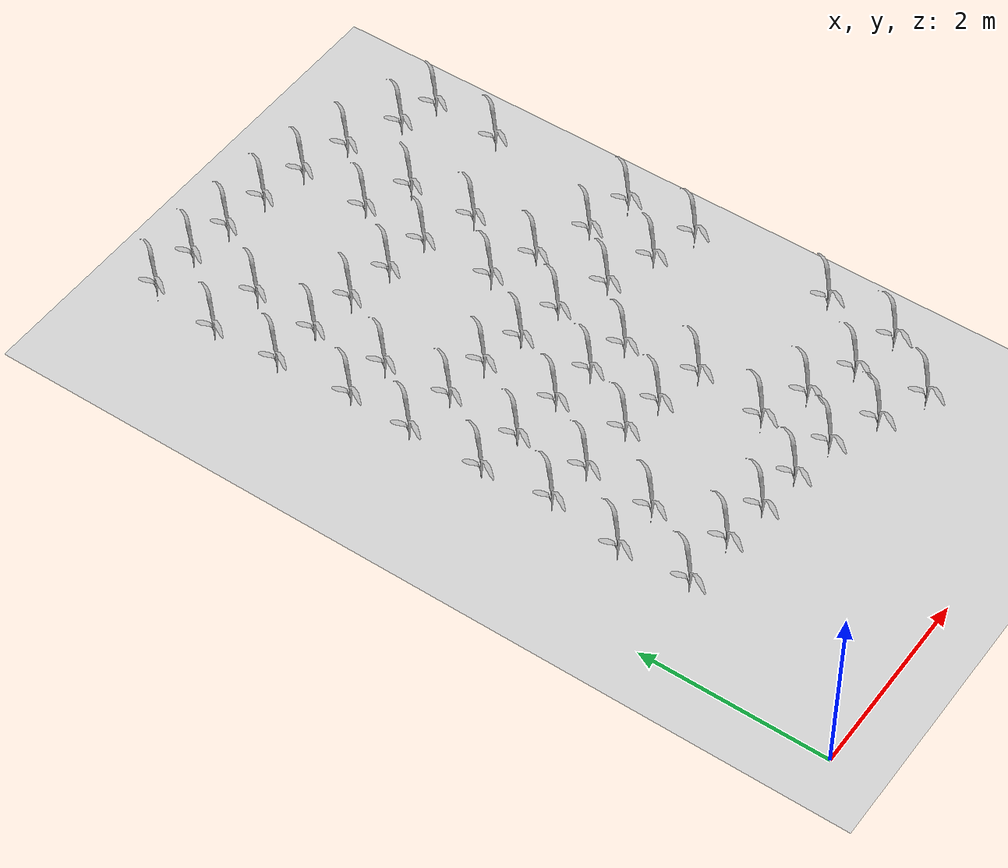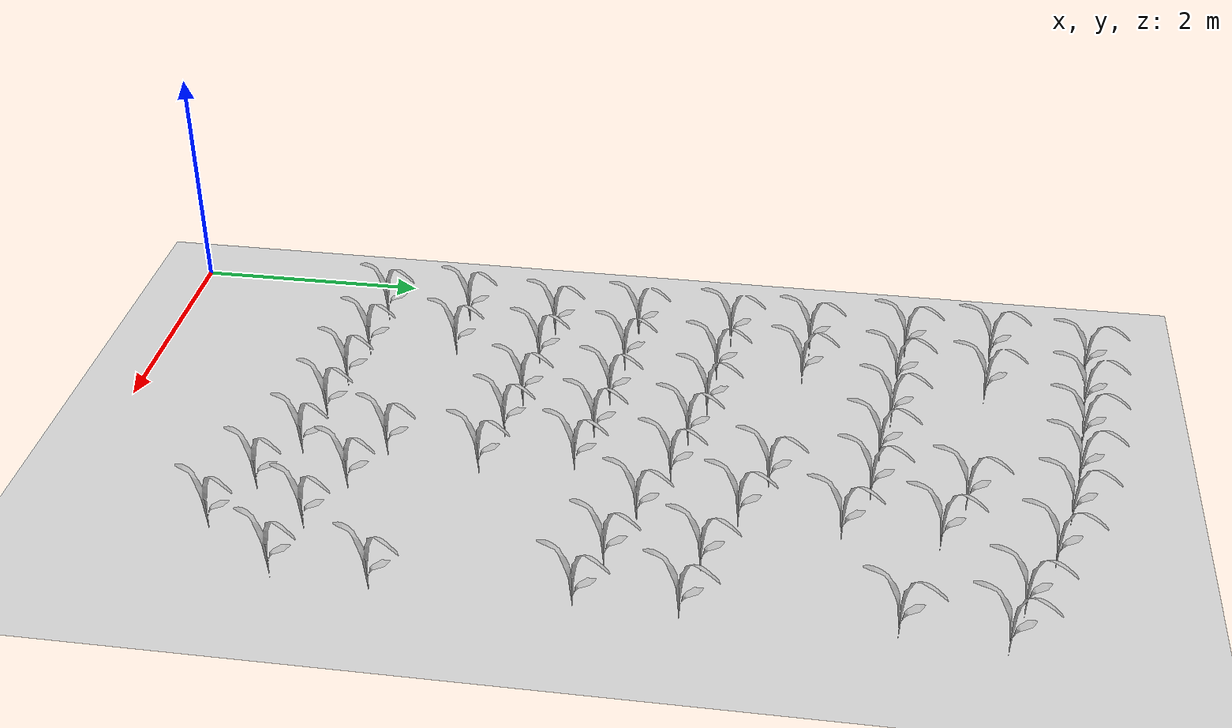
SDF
<sdf version="1.7">
 <world name="default">
  <model name="ground_plane">
   <static>1</static>
   <link name="link">
    <collision name="collision">
     <geometry><plane><normal>0 0 1</normal><size>100 100</size></plane></geometry>
     <surface><friction><ode><mu>100</mu><mu2>50</mu2></ode></friction></surface>
    </collision>
    <visual name="visual">
     <cast_shadows>0</cast_shadows>
     <geometry><plane><normal>0 0 1</normal><size>100 100</size></plane></geometry>
     <material>
      <script><uri>file://media/materials/scripts/gazebo.material</uri><name>Gazebo/Grey</name></script>
     </material>
    </visual>
   </link>
  </model>
  <model name="field_row_full_double">
   <model name="maize_02_clone_100">
    <pose>-3.79971 1.28783 0.000249 0 -0 0</pose>
    <link name="maize_02_link">
     <inertial>
      <pose>0 0 0.01 0 -0 0</pose>
      <mass>0.3</mass>
      <inertia>
       <ixx>0.00334167</ixx>
       <ixy>0</ixy>
       <ixz>0</ixz>
       <iyy>0.00334167</iyy>
       <iyz>0</iyz>
       <izz>1.66667e-05</izz>
      </inertia>
      <pose>0 0 0.1 0 -0 0</pose>
     </inertial>
     <collision name="collision">
      <pose>0 0 0.2 0 -0 0</pose>
      <geometry><box><size>0.02 0.02 0.4</size></box></geometry>
      <surface><friction><ode><mu>10</mu><mu2>10</mu2></ode></friction></surface>
     </collision>
     <visual name="visual">
      <geometry>
       <mesh><uri>model://maize_02/meshes/maize_02.dae</uri><scale>0.683166 0.683166 0.683166</scale></mesh>
      </geometry>
     </visual>
    </link>
   </model>
   <model name="maize_02_clone_101">
    <pose>-3.34971 1.17983 0.000249 0 -0 0</pose>
    <link name="maize_02_link">
     <inertial>
      <pose>0 0 0.01 0 -0 0</pose>
      <mass>0.3</mass>
      <inertia>
       <ixx>0.00334167</ixx>
       <ixy>0</ixy>
       <ixz>0</ixz>
       <iyy>0.00334167</iyy>
       <iyz>0</iyz>
       <izz>1.66667e-05</izz>
      </inertia>
      <pose>0 0 0.1 0 -0 0</pose>
     </inertial>
     <collision name="collision">
      <pose>0 0 0.2 0 -0 0</pose>
      <geometry><box><size>0.02 0.02 0.4</size></box></geometry>
      <surface><friction><ode><mu>10</mu><mu2>10</mu2></ode></friction></surface>
     </collision>
     <visual name="visual">
      <geometry>
       <mesh><uri>model://maize_02/meshes/maize_02.dae</uri><scale>0.683166 0.683166 0.683166</scale></mesh>
      </geometry>
     </visual>
    </link>
   </model>
   <model name="maize_02_clone_102">
    <pose>-2.85471 1.09883 0.000249 0 -0 0</pose>
    <link name="maize_02_link">
     <inertial>
      <pose>0 0 0.01 0 -0 0</pose>
      <mass>0.3</mass>
      <inertia>
       <ixx>0.00334167</ixx>
       <ixy>0</ixy>
       <ixz>0</ixz>
       <iyy>0.00334167</iyy>
       <iyz>0</iyz>
       <izz>1.66667e-05</izz>
      </inertia>
      <pose>0 0 0.1 0 -0 0</pose>
     </inertial>
     <collision name="collision">
      <pose>0 0 0.2 0 -0 0</pose>
      <geometry><box><size>0.02 0.02 0.4</size></box></geometry>
      <surface><friction><ode><mu>10</mu><mu2>10</mu2></ode></friction></surface>
     </collision>
     <visual name="visual">
      <geometry>
       <mesh><uri>model://maize_02/meshes/maize_02.dae</uri><scale>0.683166 0.683166 0.683166</scale></mesh>
      </geometry>
     </visual>
    </link>
   </model>
   <model name="maize_02_clone_103">
    <pose>-2.30571 0.900831 0.000249 0 -0 0</pose>
    <link name="maize_02_link">
     <inertial>
      <pose>0 0 0.01 0 -0 0</pose>
      <mass>0.3</mass>
      <inertia>
       <ixx>0.00334167</ixx>
       <ixy>0</ixy>
       <ixz>0</ixz>
       <iyy>0.00334167</iyy>
       <iyz>0</iyz>
       <izz>1.66667e-05</izz>
      </inertia>
      <pose>0 0 0.1 0 -0 0</pose>
     </inertial>
     <collision name="collision">
      <pose>0 0 0.2 0 -0 0</pose>
      <geometry><box><size>0.02 0.02 0.4</size></box></geometry>
      <surface><friction><ode><mu>10</mu><mu2>10</mu2></ode></friction></surface>
     </collision>
     <visual name="visual">
      <geometry>
       <mesh><uri>model://maize_02/meshes/maize_02.dae</uri><scale>0.683166 0.683166 0.683166</scale></mesh>
      </geometry>
     </visual>
    </link>
   </model>
   <model name="maize_02_clone_104">
    <pose>-1.76571 0.72983 0.000249 0 -0 0</pose>
    <link name="maize_02_link">
     <inertial>
      <pose>0 0 0.01 0 -0 0</pose>
      <mass>0.3</mass>
      <inertia>
       <ixx>0.00334167</ixx>
       <ixy>0</ixy>
       <ixz>0</ixz>
       <iyy>0.00334167</iyy>
       <iyz>0</iyz>
       <izz>1.66667e-05</izz>
      </inertia>
      <pose>0 0 0.1 0 -0 0</pose>
     </inertial>
     <collision name="collision">
      <pose>0 0 0.2 0 -0 0</pose>
      <geometry><box><size>0.02 0.02 0.4</size></box></geometry>
      <surface><friction><ode><mu>10</mu><mu2>10</mu2></ode></friction></surface>
     </collision>
     <visual name="visual">
      <geometry>
       <mesh><uri>model://maize_02/meshes/maize_02.dae</uri><scale>0.683166 0.683166 0.683166</scale></mesh>
      </geometry>
     </visual>
    </link>
   </model>
   <model name="maize_02_clone_105">
    <pose>-1.27071 0.57683 0.000249 0 -0 0</pose>
    <link name="maize_02_link">
     <inertial>
      <pose>0 0 0.01 0 -0 0</pose>
      <mass>0.3</mass>
      <inertia>
       <ixx>0.00334167</ixx>
       <ixy>0</ixy>
       <ixz>0</ixz>
       <iyy>0.00334167</iyy>
       <iyz>0</iyz>
       <izz>1.66667e-05</izz>
      </inertia>
      <pose>0 0 0.1 0 -0 0</pose>
     </inertial>
     <collision name="collision">
      <pose>0 0 0.2 0 -0 0</pose>
      <geometry><box><size>0.02 0.02 0.4</size></box></geometry>
      <surface><friction><ode><mu>10</mu><mu2>10</mu2></ode></friction></surface>
     </collision>
     <visual name="visual">
      <geometry>
       <mesh><uri>model://maize_02/meshes/maize_02.dae</uri><scale>0.683166 0.683166 0.683166</scale></mesh>
      </geometry>
     </visual>
    </link>
   </model>
   <model name="maize_02_clone_110">
    <pose>-1.27971 1.35083 0.000249 0 -0 0</pose>
    <link name="maize_02_link">
     <inertial>
      <pose>0 0 0.01 0 -0 0</pose>
      <mass>0.3</mass>
      <inertia>
       <ixx>0.00334167</ixx>
       <ixy>0</ixy>
       <ixz>0</ixz>
       <iyy>0.00334167</iyy>
       <iyz>0</iyz>
       <izz>1.66667e-05</izz>
      </inertia>
      <pose>0 0 0.1 0 -0 0</pose>
     </inertial>
     <collision name="collision">
      <pose>0 0 0.2 0 -0 0</pose>
      <geometry><box><size>0.02 0.02 0.4</size></box></geometry>
      <surface><friction><ode><mu>10</mu><mu2>10</mu2></ode></friction></surface>
     </collision>
     <visual name="visual">
      <geometry>
       <mesh><uri>model://maize_02/meshes/maize_02.dae</uri><scale>0.683166 0.683166 0.683166</scale></mesh>
      </geometry>
     </visual>
    </link>
   </model>
   <model name="maize_02_clone_111">
    <pose>-1.81071 1.44983 0.000249 0 -0 0</pose>
    <link name="maize_02_link">
     <inertial>
      <pose>0 0 0.01 0 -0 0</pose>
      <mass>0.3</mass>
      <inertia>
       <ixx>0.00334167</ixx>
       <ixy>0</ixy>
       <ixz>0</ixz>
       <iyy>0.00334167</iyy>
       <iyz>0</iyz>
       <izz>1.66667e-05</izz>
      </inertia>
      <pose>0 0 0.1 0 -0 0</pose>
     </inertial>
     <collision name="collision">
      <pose>0 0 0.2 0 -0 0</pose>
      <geometry><box><size>0.02 0.02 0.4</size></box></geometry>
      <surface><friction><ode><mu>10</mu><mu2>10</mu2></ode></friction></surface>
     </collision>
     <visual name="visual">
      <geometry>
       <mesh><uri>model://maize_02/meshes/maize_02.dae</uri><scale>0.683166 0.683166 0.683166</scale></mesh>
      </geometry>
     </visual>
    </link>
   </model>
   <model name="maize_02_clone_112">
    <pose>-2.39571 1.67483 0.000249 0 -0 0</pose>
    <link name="maize_02_link">
     <inertial>
      <pose>0 0 0.01 0 -0 0</pose>
      <mass>0.3</mass>
      <inertia>
       <ixx>0.00334167</ixx>
       <ixy>0</ixy>
       <ixz>0</ixz>
       <iyy>0.00334167</iyy>
       <iyz>0</iyz>
       <izz>1.66667e-05</izz>
      </inertia>
      <pose>0 0 0.1 0 -0 0</pose>
     </inertial>
     <collision name="collision">
      <pose>0 0 0.2 0 -0 0</pose>
      <geometry><box><size>0.02 0.02 0.4</size></box></geometry>
      <surface><friction><ode><mu>10</mu><mu2>10</mu2></ode></friction></surface>
     </collision>
     <visual name="visual">
      <geometry>
       <mesh><uri>model://maize_02/meshes/maize_02.dae</uri><scale>0.683166 0.683166 0.683166</scale></mesh>
      </geometry>
     </visual>
    </link>
   </model>
   <model name="maize_02_clone_113">
    <pose>-2.86371 1.87283 0.000249 0 -0 0</pose>
    <link name="maize_02_link">
     <inertial>
      <pose>0 0 0.01 0 -0 0</pose>
      <mass>0.3</mass>
      <inertia>
       <ixx>0.00334167</ixx>
       <ixy>0</ixy>
       <ixz>0</ixz>
       <iyy>0.00334167</iyy>
       <iyz>0</iyz>
       <izz>1.66667e-05</izz>
      </inertia>
      <pose>0 0 0.1 0 -0 0</pose>
     </inertial>
     <collision name="collision">
      <pose>0 0 0.2 0 -0 0</pose>
      <geometry><box><size>0.02 0.02 0.4</size></box></geometry>
      <surface><friction><ode><mu>10</mu><mu2>10</mu2></ode></friction></surface>
     </collision>
     <visual name="visual">
      <geometry>
       <mesh><uri>model://maize_02/meshes/maize_02.dae</uri><scale>0.683166 0.683166 0.683166</scale></mesh>
      </geometry>
     </visual>
    </link>
   </model>
   <model name="maize_02_clone_114">
    <pose>-4.34871 2.04383 0.000249 0 -0 0</pose>
    <link name="maize_02_link">
     <inertial>
      <pose>0 0 0.01 0 -0 0</pose>
      <mass>0.3</mass>
      <inertia>
       <ixx>0.00334167</ixx>
       <ixy>0</ixy>
       <ixz>0</ixz>
       <iyy>0.00334167</iyy>
       <iyz>0</iyz>
       <izz>1.66667e-05</izz>
      </inertia>
      <pose>0 0 0.1 0 -0 0</pose>
     </inertial>
     <collision name="collision">
      <pose>0 0 0.2 0 -0 0</pose>
      <geometry><box><size>0.02 0.02 0.4</size></box></geometry>
      <surface><friction><ode><mu>10</mu><mu2>10</mu2></ode></friction></surface>
     </collision>
     <visual name="visual">
      <geometry>
       <mesh><uri>model://maize_02/meshes/maize_02.dae</uri><scale>0.683166 0.683166 0.683166</scale></mesh>
      </geometry>
     </visual>
    </link>
   </model>
   <model name="maize_02_clone_115">
    <pose>-4.83471 2.07983 0.000249 0 -0 0</pose>
    <link name="maize_02_link">
     <inertial>
      <pose>0 0 0.01 0 -0 0</pose>
      <mass>0.3</mass>
      <inertia>
       <ixx>0.00334167</ixx>
       <ixy>0</ixy>
       <ixz>0</ixz>
       <iyy>0.00334167</iyy>
       <iyz>0</iyz>
       <izz>1.66667e-05</izz>
      </inertia>
      <pose>0 0 0.1 0 -0 0</pose>
     </inertial>
     <collision name="collision">
      <pose>0 0 0.2 0 -0 0</pose>
      <geometry><box><size>0.02 0.02 0.4</size></box></geometry>
      <surface><friction><ode><mu>10</mu><mu2>10</mu2></ode></friction></surface>
     </collision>
     <visual name="visual">
      <geometry>
       <mesh><uri>model://maize_02/meshes/maize_02.dae</uri><scale>0.683166 0.683166 0.683166</scale></mesh>
      </geometry>
     </visual>
    </link>
   </model>
   <model name="maize_02_clone_119">
    <pose>-2.86371 2.67383 0.000249 0 -0 0</pose>
    <link name="maize_02_link">
     <inertial>
      <pose>0 0 0.01 0 -0 0</pose>
      <mass>0.3</mass>
      <inertia>
       <ixx>0.00334167</ixx>
       <ixy>0</ixy>
       <ixz>0</ixz>
       <iyy>0.00334167</iyy>
       <iyz>0</iyz>
       <izz>1.66667e-05</izz>
      </inertia>
      <pose>0 0 0.1 0 -0 0</pose>
     </inertial>
     <collision name="collision">
      <pose>0 0 0.2 0 -0 0</pose>
      <geometry><box><size>0.02 0.02 0.4</size></box></geometry>
      <surface><friction><ode><mu>10</mu><mu2>10</mu2></ode></friction></surface>
     </collision>
     <visual name="visual">
      <geometry>
       <mesh><uri>model://maize_02/meshes/maize_02.dae</uri><scale>0.683166 0.683166 0.683166</scale></mesh>
      </geometry>
     </visual>
    </link>
   </model>
   <model name="maize_02_clone_120">
    <pose>-2.32371 2.46683 0.000249 0 -0 0</pose>
    <link name="maize_02_link">
     <inertial>
      <pose>0 0 0.01 0 -0 0</pose>
      <mass>0.3</mass>
      <inertia>
       <ixx>0.00334167</ixx>
       <ixy>0</ixy>
       <ixz>0</ixz>
       <iyy>0.00334167</iyy>
       <iyz>0</iyz>
       <izz>1.66667e-05</izz>
      </inertia>
      <pose>0 0 0.1 0 -0 0</pose>
     </inertial>
     <collision name="collision">
      <pose>0 0 0.2 0 -0 0</pose>
      <geometry><box><size>0.02 0.02 0.4</size></box></geometry>
      <surface><friction><ode><mu>10</mu><mu2>10</mu2></ode></friction></surface>
     </collision>
     <visual name="visual">
      <geometry>
       <mesh><uri>model://maize_02/meshes/maize_02.dae</uri><scale>0.683166 0.683166 0.683166</scale></mesh>
      </geometry>
     </visual>
    </link>
   </model>
   <model name="maize_02_clone_121">
    <pose>-3.35871 2.72783 0.000249 0 -0 0</pose>
    <link name="maize_02_link">
     <inertial>
      <pose>0 0 0.01 0 -0 0</pose>
      <mass>0.3</mass>
      <inertia>
       <ixx>0.00334167</ixx>
       <ixy>0</ixy>
       <ixz>0</ixz>
       <iyy>0.00334167</iyy>
       <iyz>0</iyz>
       <izz>1.66667e-05</izz>
      </inertia>
      <pose>0 0 0.1 0 -0 0</pose>
     </inertial>
     <collision name="collision">
      <pose>0 0 0.2 0 -0 0</pose>
      <geometry><box><size>0.02 0.02 0.4</size></box></geometry>
      <surface><friction><ode><mu>10</mu><mu2>10</mu2></ode></friction></surface>
     </collision>
     <visual name="visual">
      <geometry>
       <mesh><uri>model://maize_02/meshes/maize_02.dae</uri><scale>0.683166 0.683166 0.683166</scale></mesh>
      </geometry>
     </visual>
    </link>
   </model>
   <model name="maize_02_clone_122">
    <pose>-3.86271 2.80883 0.000249 0 -0 0</pose>
    <link name="maize_02_link">
     <inertial>
      <pose>0 0 0.01 0 -0 0</pose>
      <mass>0.3</mass>
      <inertia>
       <ixx>0.00334167</ixx>
       <ixy>0</ixy>
       <ixz>0</ixz>
       <iyy>0.00334167</iyy>
       <iyz>0</iyz>
       <izz>1.66667e-05</izz>
      </inertia>
      <pose>0 0 0.1 0 -0 0</pose>
     </inertial>
     <collision name="collision">
      <pose>0 0 0.2 0 -0 0</pose>
      <geometry><box><size>0.02 0.02 0.4</size></box></geometry>
      <surface><friction><ode><mu>10</mu><mu2>10</mu2></ode></friction></surface>
     </collision>
     <visual name="visual">
      <geometry>
       <mesh><uri>model://maize_02/meshes/maize_02.dae</uri><scale>0.683166 0.683166 0.683166</scale></mesh>
      </geometry>
     </visual>
    </link>
   </model>
   <model name="maize_02_clone_123">
    <pose>-4.38471 2.84483 0.000249 0 -0 0</pose>
    <link name="maize_02_link">
     <inertial>
      <pose>0 0 0.01 0 -0 0</pose>
      <mass>0.3</mass>
      <inertia>
       <ixx>0.00334167</ixx>
       <ixy>0</ixy>
       <ixz>0</ixz>
       <iyy>0.00334167</iyy>
       <iyz>0</iyz>
       <izz>1.66667e-05</izz>
      </inertia>
      <pose>0 0 0.1 0 -0 0</pose>
     </inertial>
     <collision name="collision">
      <pose>0 0 0.2 0 -0 0</pose>
      <geometry><box><size>0.02 0.02 0.4</size></box></geometry>
      <surface><friction><ode><mu>10</mu><mu2>10</mu2></ode></friction></surface>
     </collision>
     <visual name="visual">
      <geometry>
       <mesh><uri>model://maize_02/meshes/maize_02.dae</uri><scale>0.683166 0.683166 0.683166</scale></mesh>
      </geometry>
     </visual>
    </link>
   </model>
   <model name="maize_02_clone_124">
    <pose>-4.88871 2.90783 0.000249 0 -0 0</pose>
    <link name="maize_02_link">
     <inertial>
      <pose>0 0 0.01 0 -0 0</pose>
      <mass>0.3</mass>
      <inertia>
       <ixx>0.00334167</ixx>
       <ixy>0</ixy>
       <ixz>0</ixz>
       <iyy>0.00334167</iyy>
       <iyz>0</iyz>
       <izz>1.66667e-05</izz>
      </inertia>
      <pose>0 0 0.1 0 -0 0</pose>
     </inertial>
     <collision name="collision">
      <pose>0 0 0.2 0 -0 0</pose>
      <geometry><box><size>0.02 0.02 0.4</size></box></geometry>
      <surface><friction><ode><mu>10</mu><mu2>10</mu2></ode></friction></surface>
     </collision>
     <visual name="visual">
      <geometry>
       <mesh><uri>model://maize_02/meshes/maize_02.dae</uri><scale>0.683166 0.683166 0.683166</scale></mesh>
      </geometry>
     </visual>
    </link>
   </model>
   <model name="maize_02_clone_125">
    <pose>-4.91571 3.63683 0.000249 0 -0 0</pose>
    <link name="maize_02_link">
     <inertial>
      <pose>0 0 0.01 0 -0 0</pose>
      <mass>0.3</mass>
      <inertia>
       <ixx>0.00334167</ixx>
       <ixy>0</ixy>
       <ixz>0</ixz>
       <iyy>0.00334167</iyy>
       <iyz>0</iyz>
       <izz>1.66667e-05</izz>
      </inertia>
      <pose>0 0 0.1 0 -0 0</pose>
     </inertial>
     <collision name="collision">
      <pose>0 0 0.2 0 -0 0</pose>
      <geometry><box><size>0.02 0.02 0.4</size></box></geometry>
      <surface><friction><ode><mu>10</mu><mu2>10</mu2></ode></friction></surface>
     </collision>
     <visual name="visual">
      <geometry>
       <mesh><uri>model://maize_02/meshes/maize_02.dae</uri><scale>0.683166 0.683166 0.683166</scale></mesh>
      </geometry>
     </visual>
    </link>
   </model>
   <model name="maize_02_clone_126">
    <pose>-4.33071 3.58283 0.000249 0 -0 0</pose>
    <link name="maize_02_link">
     <inertial>
      <pose>0 0 0.01 0 -0 0</pose>
      <mass>0.3</mass>
      <inertia>
       <ixx>0.00334167</ixx>
       <ixy>0</ixy>
       <ixz>0</ixz>
       <iyy>0.00334167</iyy>
       <iyz>0</iyz>
       <izz>1.66667e-05</izz>
      </inertia>
      <pose>0 0 0.1 0 -0 0</pose>
     </inertial>
     <collision name="collision">
      <pose>0 0 0.2 0 -0 0</pose>
      <geometry><box><size>0.02 0.02 0.4</size></box></geometry>
      <surface><friction><ode><mu>10</mu><mu2>10</mu2></ode></friction></surface>
     </collision>
     <visual name="visual">
      <geometry>
       <mesh><uri>model://maize_02/meshes/maize_02.dae</uri><scale>0.683166 0.683166 0.683166</scale></mesh>
      </geometry>
     </visual>
    </link>
   </model>
   <model name="maize_02_clone_127">
    <pose>-2.82771 3.41183 0.000249 0 -0 0</pose>
    <link name="maize_02_link">
     <inertial>
      <pose>0 0 0.01 0 -0 0</pose>
      <mass>0.3</mass>
      <inertia>
       <ixx>0.00334167</ixx>
       <ixy>0</ixy>
       <ixz>0</ixz>
       <iyy>0.00334167</iyy>
       <iyz>0</iyz>
       <izz>1.66667e-05</izz>
      </inertia>
      <pose>0 0 0.1 0 -0 0</pose>
     </inertial>
     <collision name="collision">
      <pose>0 0 0.2 0 -0 0</pose>
      <geometry><box><size>0.02 0.02 0.4</size></box></geometry>
      <surface><friction><ode><mu>10</mu><mu2>10</mu2></ode></friction></surface>
     </collision>
     <visual name="visual">
      <geometry>
       <mesh><uri>model://maize_02/meshes/maize_02.dae</uri><scale>0.683166 0.683166 0.683166</scale></mesh>
      </geometry>
     </visual>
    </link>
   </model>
   <model name="maize_02_clone_128">
    <pose>-2.34171 3.21383 0.000249 0 -0 0</pose>
    <link name="maize_02_link">
     <inertial>
      <pose>0 0 0.01 0 -0 0</pose>
      <mass>0.3</mass>
      <inertia>
       <ixx>0.00334167</ixx>
       <ixy>0</ixy>
       <ixz>0</ixz>
       <iyy>0.00334167</iyy>
       <iyz>0</iyz>
       <izz>1.66667e-05</izz>
      </inertia>
      <pose>0 0 0.1 0 -0 0</pose>
     </inertial>
     <collision name="collision">
      <pose>0 0 0.2 0 -0 0</pose>
      <geometry><box><size>0.02 0.02 0.4</size></box></geometry>
      <surface><friction><ode><mu>10</mu><mu2>10</mu2></ode></friction></surface>
     </collision>
     <visual name="visual">
      <geometry>
       <mesh><uri>model://maize_02/meshes/maize_02.dae</uri><scale>0.683166 0.683166 0.683166</scale></mesh>
      </geometry>
     </visual>
    </link>
   </model>
   <model name="maize_02_clone_129">
    <pose>-1.32471 2.91683 0.000249 0 -0 0</pose>
    <link name="maize_02_link">
     <inertial>
      <pose>0 0 0.01 0 -0 0</pose>
      <mass>0.3</mass>
      <inertia>
       <ixx>0.00334167</ixx>
       <ixy>0</ixy>
       <ixz>0</ixz>
       <iyy>0.00334167</iyy>
       <iyz>0</iyz>
       <izz>1.66667e-05</izz>
      </inertia>
      <pose>0 0 0.1 0 -0 0</pose>
     </inertial>
     <collision name="collision">
      <pose>0 0 0.2 0 -0 0</pose>
      <geometry><box><size>0.02 0.02 0.4</size></box></geometry>
      <surface><friction><ode><mu>10</mu><mu2>10</mu2></ode></friction></surface>
     </collision>
     <visual name="visual">
      <geometry>
       <mesh><uri>model://maize_02/meshes/maize_02.dae</uri><scale>0.683166 0.683166 0.683166</scale></mesh>
      </geometry>
     </visual>
    </link>
   </model>
   <model name="maize_02_clone_134">
    <pose>-1.27071 3.69083 0.000249 0 -0 0</pose>
    <link name="maize_02_link">
     <inertial>
      <pose>0 0 0.01 0 -0 0</pose>
      <mass>0.3</mass>
      <inertia>
       <ixx>0.00334167</ixx>
       <ixy>0</ixy>
       <ixz>0</ixz>
       <iyy>0.00334167</iyy>
       <iyz>0</iyz>
       <izz>1.66667e-05</izz>
      </inertia>
      <pose>0 0 0.1 0 -0 0</pose>
     </inertial>
     <collision name="collision">
      <pose>0 0 0.2 0 -0 0</pose>
      <geometry><box><size>0.02 0.02 0.4</size></box></geometry>
      <surface><friction><ode><mu>10</mu><mu2>10</mu2></ode></friction></surface>
     </collision>
     <visual name="visual">
      <geometry>
       <mesh><uri>model://maize_02/meshes/maize_02.dae</uri><scale>0.683166 0.683166 0.683166</scale></mesh>
      </geometry>
     </visual>
    </link>
   </model>
   <model name="maize_02_clone_135">
    <pose>-1.68471 3.81683 0.000249 0 -0 0</pose>
    <link name="maize_02_link">
     <inertial>
      <pose>0 0 0.01 0 -0 0</pose>
      <mass>0.3</mass>
      <inertia>
       <ixx>0.00334167</ixx>
       <ixy>0</ixy>
       <ixz>0</ixz>
       <iyy>0.00334167</iyy>
       <iyz>0</iyz>
       <izz>1.66667e-05</izz>
      </inertia>
      <pose>0 0 0.1 0 -0 0</pose>
     </inertial>
     <collision name="collision">
      <pose>0 0 0.2 0 -0 0</pose>
      <geometry><box><size>0.02 0.02 0.4</size></box></geometry>
      <surface><friction><ode><mu>10</mu><mu2>10</mu2></ode></friction></surface>
     </collision>
     <visual name="visual">
      <geometry>
       <mesh><uri>model://maize_02/meshes/maize_02.dae</uri><scale>0.683166 0.683166 0.683166</scale></mesh>
      </geometry>
     </visual>
    </link>
   </model>
   <model name="maize_02_clone_136">
    <pose>-2.25171 4.06883 0.000249 0 -0 0</pose>
    <link name="maize_02_link">
     <inertial>
      <pose>0 0 0.01 0 -0 0</pose>
      <mass>0.3</mass>
      <inertia>
       <ixx>0.00334167</ixx>
       <ixy>0</ixy>
       <ixz>0</ixz>
       <iyy>0.00334167</iyy>
       <iyz>0</iyz>
       <izz>1.66667e-05</izz>
      </inertia>
      <pose>0 0 0.1 0 -0 0</pose>
     </inertial>
     <collision name="collision">
      <pose>0 0 0.2 0 -0 0</pose>
      <geometry><box><size>0.02 0.02 0.4</size></box></geometry>
      <surface><friction><ode><mu>10</mu><mu2>10</mu2></ode></friction></surface>
     </collision>
     <visual name="visual">
      <geometry>
       <mesh><uri>model://maize_02/meshes/maize_02.dae</uri><scale>0.683166 0.683166 0.683166</scale></mesh>
      </geometry>
     </visual>
    </link>
   </model>
   <model name="maize_02_clone_137">
    <pose>-2.78271 4.21283 0.000249 0 -0 0</pose>
    <link name="maize_02_link">
     <inertial>
      <pose>0 0 0.01 0 -0 0</pose>
      <mass>0.3</mass>
      <inertia>
       <ixx>0.00334167</ixx>
       <ixy>0</ixy>
       <ixz>0</ixz>
       <iyy>0.00334167</iyy>
       <iyz>0</iyz>
       <izz>1.66667e-05</izz>
      </inertia>
      <pose>0 0 0.1 0 -0 0</pose>
     </inertial>
     <collision name="collision">
      <pose>0 0 0.2 0 -0 0</pose>
      <geometry><box><size>0.02 0.02 0.4</size></box></geometry>
      <surface><friction><ode><mu>10</mu><mu2>10</mu2></ode></friction></surface>
     </collision>
     <visual name="visual">
      <geometry>
       <mesh><uri>model://maize_02/meshes/maize_02.dae</uri><scale>0.683166 0.683166 0.683166</scale></mesh>
      </geometry>
     </visual>
    </link>
   </model>
   <model name="maize_02_clone_138">
    <pose>-3.29571 4.30283 0.000249 0 -0 0</pose>
    <link name="maize_02_link">
     <inertial>
      <pose>0 0 0.01 0 -0 0</pose>
      <mass>0.3</mass>
      <inertia>
       <ixx>0.00334167</ixx>
       <ixy>0</ixy>
       <ixz>0</ixz>
       <iyy>0.00334167</iyy>
       <iyz>0</iyz>
       <izz>1.66667e-05</izz>
      </inertia>
      <pose>0 0 0.1 0 -0 0</pose>
     </inertial>
     <collision name="collision">
      <pose>0 0 0.2 0 -0 0</pose>
      <geometry><box><size>0.02 0.02 0.4</size></box></geometry>
      <surface><friction><ode><mu>10</mu><mu2>10</mu2></ode></friction></surface>
     </collision>
     <visual name="visual">
      <geometry>
       <mesh><uri>model://maize_02/meshes/maize_02.dae</uri><scale>0.683166 0.683166 0.683166</scale></mesh>
      </geometry>
     </visual>
    </link>
   </model>
   <model name="maize_02_clone_139">
    <pose>-3.79971 4.35683 0.000249 0 -0 0</pose>
    <link name="maize_02_link">
     <inertial>
      <pose>0 0 0.01 0 -0 0</pose>
      <mass>0.3</mass>
      <inertia>
       <ixx>0.00334167</ixx>
       <ixy>0</ixy>
       <ixz>0</ixz>
       <iyy>0.00334167</iyy>
       <iyz>0</iyz>
       <izz>1.66667e-05</izz>
      </inertia>
      <pose>0 0 0.1 0 -0 0</pose>
     </inertial>
     <collision name="collision">
      <pose>0 0 0.2 0 -0 0</pose>
      <geometry><box><size>0.02 0.02 0.4</size></box></geometry>
      <surface><friction><ode><mu>10</mu><mu2>10</mu2></ode></friction></surface>
     </collision>
     <visual name="visual">
      <geometry>
       <mesh><uri>model://maize_02/meshes/maize_02.dae</uri><scale>0.683166 0.683166 0.683166</scale></mesh>
      </geometry>
     </visual>
    </link>
   </model>
   <model name="maize_02_clone_140">
    <pose>-4.28571 4.40183 0.000249 0 -0 0</pose>
    <link name="maize_02_link">
     <inertial>
      <pose>0 0 0.01 0 -0 0</pose>
      <mass>0.3</mass>
      <inertia>
       <ixx>0.00334167</ixx>
       <ixy>0</ixy>
       <ixz>0</ixz>
       <iyy>0.00334167</iyy>
       <iyz>0</iyz>
       <izz>1.66667e-05</izz>
      </inertia>
      <pose>0 0 0.1 0 -0 0</pose>
     </inertial>
     <collision name="collision">
      <pose>0 0 0.2 0 -0 0</pose>
      <geometry><box><size>0.02 0.02 0.4</size></box></geometry>
      <surface><friction><ode><mu>10</mu><mu2>10</mu2></ode></friction></surface>
     </collision>
     <visual name="visual">
      <geometry>
       <mesh><uri>model://maize_02/meshes/maize_02.dae</uri><scale>0.683166 0.683166 0.683166</scale></mesh>
      </geometry>
     </visual>
    </link>
   </model>
   <model name="maize_02_clone_141">
    <pose>-4.79871 4.43783 0.000249 0 -0 0</pose>
    <link name="maize_02_link">
     <inertial>
      <pose>0 0 0.01 0 -0 0</pose>
      <mass>0.3</mass>
      <inertia>
       <ixx>0.00334167</ixx>
       <ixy>0</ixy>
       <ixz>0</ixz>
       <iyy>0.00334167</iyy>
       <iyz>0</iyz>
       <izz>1.66667e-05</izz>
      </inertia>
      <pose>0 0 0.1 0 -0 0</pose>
     </inertial>
     <collision name="collision">
      <pose>0 0 0.2 0 -0 0</pose>
      <geometry><box><size>0.02 0.02 0.4</size></box></geometry>
      <surface><friction><ode><mu>10</mu><mu2>10</mu2></ode></friction></surface>
     </collision>
     <visual name="visual">
      <geometry>
       <mesh><uri>model://maize_02/meshes/maize_02.dae</uri><scale>0.683166 0.683166 0.683166</scale></mesh>
      </geometry>
     </visual>
    </link>
   </model>
   <model name="maize_02_clone_28">
    <pose>-4.83984 -1.70411 0.000249 0 -0 0</pose>
    <link name="maize_02_link">
     <inertial>
      <pose>0 0 0.01 0 -0 0</pose>
      <mass>0.3</mass>
      <inertia>
       <ixx>0.00334167</ixx>
       <ixy>0</ixy>
       <ixz>0</ixz>
       <iyy>0.00334167</iyy>
       <iyz>0</iyz>
       <izz>1.66667e-05</izz>
      </inertia>
      <pose>0 0 0.1 0 -0 0</pose>
     </inertial>
     <collision name="collision">
      <pose>0 0 0.2 0 -0 0</pose>
      <geometry><box><size>0.02 0.02 0.4</size></box></geometry>
      <surface><friction><ode><mu>10</mu><mu2>10</mu2></ode></friction></surface>
     </collision>
     <visual name="visual">
      <geometry>
       <mesh><uri>model://maize_02/meshes/maize_02.dae</uri><scale>0.683166 0.683166 0.683166</scale></mesh>
      </geometry>
     </visual>
    </link>
   </model>
   <model name="maize_02_clone_29">
    <pose>-4.26128 -1.72441 0.000249 0 -0 0</pose>
    <link name="maize_02_link">
     <inertial>
      <pose>0 0 0.01 0 -0 0</pose>
      <mass>0.3</mass>
      <inertia>
       <ixx>0.00334167</ixx>
       <ixy>0</ixy>
       <ixz>0</ixz>
       <iyy>0.00334167</iyy>
       <iyz>0</iyz>
       <izz>1.66667e-05</izz>
      </inertia>
      <pose>0 0 0.1 0 -0 0</pose>
     </inertial>
     <collision name="collision">
      <pose>0 0 0.2 0 -0 0</pose>
      <geometry><box><size>0.02 0.02 0.4</size></box></geometry>
      <surface><friction><ode><mu>10</mu><mu2>10</mu2></ode></friction></surface>
     </collision>
     <visual name="visual">
      <geometry>
       <mesh><uri>model://maize_02/meshes/maize_02.dae</uri><scale>0.683166 0.683166 0.683166</scale></mesh>
      </geometry>
     </visual>
    </link>
   </model>
   <model name="maize_02_clone_30">
    <pose>-3.76392 -1.78531 0.000249 0 -0 0</pose>
    <link name="maize_02_link">
     <inertial>
      <pose>0 0 0.01 0 -0 0</pose>
      <mass>0.3</mass>
      <inertia>
       <ixx>0.00334167</ixx>
       <ixy>0</ixy>
       <ixz>0</ixz>
       <iyy>0.00334167</iyy>
       <iyz>0</iyz>
       <izz>1.66667e-05</izz>
      </inertia>
      <pose>0 0 0.1 0 -0 0</pose>
     </inertial>
     <collision name="collision">
      <pose>0 0 0.2 0 -0 0</pose>
      <geometry><box><size>0.02 0.02 0.4</size></box></geometry>
      <surface><friction><ode><mu>10</mu><mu2>10</mu2></ode></friction></surface>
     </collision>
     <visual name="visual">
      <geometry>
       <mesh><uri>model://maize_02/meshes/maize_02.dae</uri><scale>0.683166 0.683166 0.683166</scale></mesh>
      </geometry>
     </visual>
    </link>
   </model>
   <model name="maize_02_clone_31">
    <pose>-3.27671 -1.82592 0.000249 0 -0 0</pose>
    <link name="maize_02_link">
     <inertial>
      <pose>0 0 0.01 0 -0 0</pose>
      <mass>0.3</mass>
      <inertia>
       <ixx>0.00334167</ixx>
       <ixy>0</ixy>
       <ixz>0</ixz>
       <iyy>0.00334167</iyy>
       <iyz>0</iyz>
       <izz>1.66667e-05</izz>
      </inertia>
      <pose>0 0 0.1 0 -0 0</pose>
     </inertial>
     <collision name="collision">
      <pose>0 0 0.2 0 -0 0</pose>
      <geometry><box><size>0.02 0.02 0.4</size></box></geometry>
      <surface><friction><ode><mu>10</mu><mu2>10</mu2></ode></friction></surface>
     </collision>
     <visual name="visual">
      <geometry>
       <mesh><uri>model://maize_02/meshes/maize_02.dae</uri><scale>0.683166 0.683166 0.683166</scale></mesh>
      </geometry>
     </visual>
    </link>
   </model>
   <model name="maize_02_clone_32">
    <pose>-2.7692 -1.88682 0.000249 0 -0 0</pose>
    <link name="maize_02_link">
     <inertial>
      <pose>0 0 0.01 0 -0 0</pose>
      <mass>0.3</mass>
      <inertia>
       <ixx>0.00334167</ixx>
       <ixy>0</ixy>
       <ixz>0</ixz>
       <iyy>0.00334167</iyy>
       <iyz>0</iyz>
       <izz>1.66667e-05</izz>
      </inertia>
      <pose>0 0 0.1 0 -0 0</pose>
     </inertial>
     <collision name="collision">
      <pose>0 0 0.2 0 -0 0</pose>
      <geometry><box><size>0.02 0.02 0.4</size></box></geometry>
      <surface><friction><ode><mu>10</mu><mu2>10</mu2></ode></friction></surface>
     </collision>
     <visual name="visual">
      <geometry>
       <mesh><uri>model://maize_02/meshes/maize_02.dae</uri><scale>0.683166 0.683166 0.683166</scale></mesh>
      </geometry>
     </visual>
    </link>
   </model>
   <model name="maize_02_clone_33">
    <pose>-2.27185 -2.11012 0.000249 0 -0 0</pose>
    <link name="maize_02_link">
     <inertial>
      <pose>0 0 0.01 0 -0 0</pose>
      <mass>0.3</mass>
      <inertia>
       <ixx>0.00334167</ixx>
       <ixy>0</ixy>
       <ixz>0</ixz>
       <iyy>0.00334167</iyy>
       <iyz>0</iyz>
       <izz>1.66667e-05</izz>
      </inertia>
      <pose>0 0 0.1 0 -0 0</pose>
     </inertial>
     <collision name="collision">
      <pose>0 0 0.2 0 -0 0</pose>
      <geometry><box><size>0.02 0.02 0.4</size></box></geometry>
      <surface><friction><ode><mu>10</mu><mu2>10</mu2></ode></friction></surface>
     </collision>
     <visual name="visual">
      <geometry>
       <mesh><uri>model://maize_02/meshes/maize_02.dae</uri><scale>0.683166 0.683166 0.683166</scale></mesh>
      </geometry>
     </visual>
    </link>
   </model>
   <model name="maize_02_clone_34">
    <pose>-1.75419 -2.32328 0.000249 0 -0 0</pose>
    <link name="maize_02_link">
     <inertial>
      <pose>0 0 0.01 0 -0 0</pose>
      <mass>0.3</mass>
      <inertia>
       <ixx>0.00334167</ixx>
       <ixy>0</ixy>
       <ixz>0</ixz>
       <iyy>0.00334167</iyy>
       <iyz>0</iyz>
       <izz>1.66667e-05</izz>
      </inertia>
      <pose>0 0 0.1 0 -0 0</pose>
     </inertial>
     <collision name="collision">
      <pose>0 0 0.2 0 -0 0</pose>
      <geometry><box><size>0.02 0.02 0.4</size></box></geometry>
      <surface><friction><ode><mu>10</mu><mu2>10</mu2></ode></friction></surface>
     </collision>
     <visual name="visual">
      <geometry>
       <mesh><uri>model://maize_02/meshes/maize_02.dae</uri><scale>0.683166 0.683166 0.683166</scale></mesh>
      </geometry>
     </visual>
    </link>
   </model>
   <model name="maize_02_clone_74">
    <pose>-4.89771 -0.971168 0.000249 0 -0 0</pose>
    <link name="maize_02_link">
     <inertial>
      <pose>0 0 0.01 0 -0 0</pose>
      <mass>0.3</mass>
      <inertia>
       <ixx>0.00334167</ixx>
       <ixy>0</ixy>
       <ixz>0</ixz>
       <iyy>0.00334167</iyy>
       <iyz>0</iyz>
       <izz>1.66667e-05</izz>
      </inertia>
      <pose>0 0 0.1 0 -0 0</pose>
     </inertial>
     <collision name="collision">
      <pose>0 0 0.2 0 -0 0</pose>
      <geometry><box><size>0.02 0.02 0.4</size></box></geometry>
      <surface><friction><ode><mu>10</mu><mu2>10</mu2></ode></friction></surface>
     </collision>
     <visual name="visual">
      <geometry>
       <mesh><uri>model://maize_02/meshes/maize_02.dae</uri><scale>0.683166 0.683166 0.683166</scale></mesh>
      </geometry>
     </visual>
    </link>
   </model>
   <model name="maize_02_clone_75">
    <pose>-4.34871 -0.971168 0.000249 0 -0 0</pose>
    <link name="maize_02_link">
     <inertial>
      <pose>0 0 0.01 0 -0 0</pose>
      <mass>0.3</mass>
      <inertia>
       <ixx>0.00334167</ixx>
       <ixy>0</ixy>
       <ixz>0</ixz>
       <iyy>0.00334167</iyy>
       <iyz>0</iyz>
       <izz>1.66667e-05</izz>
      </inertia>
      <pose>0 0 0.1 0 -0 0</pose>
     </inertial>
     <collision name="collision">
      <pose>0 0 0.2 0 -0 0</pose>
      <geometry><box><size>0.02 0.02 0.4</size></box></geometry>
      <surface><friction><ode><mu>10</mu><mu2>10</mu2></ode></friction></surface>
     </collision>
     <visual name="visual">
      <geometry>
       <mesh><uri>model://maize_02/meshes/maize_02.dae</uri><scale>0.683166 0.683166 0.683166</scale></mesh>
      </geometry>
     </visual>
    </link>
   </model>
   <model name="maize_02_clone_76">
    <pose>-2.86371 -1.20517 0.000249 0 -0 0</pose>
    <link name="maize_02_link">
     <inertial>
      <pose>0 0 0.01 0 -0 0</pose>
      <mass>0.3</mass>
      <inertia>
       <ixx>0.00334167</ixx>
       <ixy>0</ixy>
       <ixz>0</ixz>
       <iyy>0.00334167</iyy>
       <iyz>0</iyz>
       <izz>1.66667e-05</izz>
      </inertia>
      <pose>0 0 0.1 0 -0 0</pose>
     </inertial>
     <collision name="collision">
      <pose>0 0 0.2 0 -0 0</pose>
      <geometry><box><size>0.02 0.02 0.4</size></box></geometry>
      <surface><friction><ode><mu>10</mu><mu2>10</mu2></ode></friction></surface>
     </collision>
     <visual name="visual">
      <geometry>
       <mesh><uri>model://maize_02/meshes/maize_02.dae</uri><scale>0.683166 0.683166 0.683166</scale></mesh>
      </geometry>
     </visual>
    </link>
   </model>
   <model name="maize_02_clone_77">
    <pose>-2.37771 -1.40317 0.000249 0 -0 0</pose>
    <link name="maize_02_link">
     <inertial>
      <pose>0 0 0.01 0 -0 0</pose>
      <mass>0.3</mass>
      <inertia>
       <ixx>0.00334167</ixx>
       <ixy>0</ixy>
       <ixz>0</ixz>
       <iyy>0.00334167</iyy>
       <iyz>0</iyz>
       <izz>1.66667e-05</izz>
      </inertia>
      <pose>0 0 0.1 0 -0 0</pose>
     </inertial>
     <collision name="collision">
      <pose>0 0 0.2 0 -0 0</pose>
      <geometry><box><size>0.02 0.02 0.4</size></box></geometry>
      <surface><friction><ode><mu>10</mu><mu2>10</mu2></ode></friction></surface>
     </collision>
     <visual name="visual">
      <geometry>
       <mesh><uri>model://maize_02/meshes/maize_02.dae</uri><scale>0.683166 0.683166 0.683166</scale></mesh>
      </geometry>
     </visual>
    </link>
   </model>
   <model name="maize_02_clone_78">
    <pose>-1.86471 -1.61017 0.000249 0 -0 0</pose>
    <link name="maize_02_link">
     <inertial>
      <pose>0 0 0.01 0 -0 0</pose>
      <mass>0.3</mass>
      <inertia>
       <ixx>0.00334167</ixx>
       <ixy>0</ixy>
       <ixz>0</ixz>
       <iyy>0.00334167</iyy>
       <iyz>0</iyz>
       <izz>1.66667e-05</izz>
      </inertia>
      <pose>0 0 0.1 0 -0 0</pose>
     </inertial>
     <collision name="collision">
      <pose>0 0 0.2 0 -0 0</pose>
      <geometry><box><size>0.02 0.02 0.4</size></box></geometry>
      <surface><friction><ode><mu>10</mu><mu2>10</mu2></ode></friction></surface>
     </collision>
     <visual name="visual">
      <geometry>
       <mesh><uri>model://maize_02/meshes/maize_02.dae</uri><scale>0.683166 0.683166 0.683166</scale></mesh>
      </geometry>
     </visual>
    </link>
   </model>
   <model name="maize_02_clone_79">
    <pose>-1.31571 -1.70917 0.000249 0 -0 0</pose>
    <link name="maize_02_link">
     <inertial>
      <pose>0 0 0.01 0 -0 0</pose>
      <mass>0.3</mass>
      <inertia>
       <ixx>0.00334167</ixx>
       <ixy>0</ixy>
       <ixz>0</ixz>
       <iyy>0.00334167</iyy>
       <iyz>0</iyz>
       <izz>1.66667e-05</izz>
      </inertia>
      <pose>0 0 0.1 0 -0 0</pose>
     </inertial>
     <collision name="collision">
      <pose>0 0 0.2 0 -0 0</pose>
      <geometry><box><size>0.02 0.02 0.4</size></box></geometry>
      <surface><friction><ode><mu>10</mu><mu2>10</mu2></ode></friction></surface>
     </collision>
     <visual name="visual">
      <geometry>
       <mesh><uri>model://maize_02/meshes/maize_02.dae</uri><scale>0.683166 0.683166 0.683166</scale></mesh>
      </geometry>
     </visual>
    </link>
   </model>
   <model name="maize_02_clone_81">
    <pose>-4.78071 -0.170168 0.000249 0 -0 0</pose>
    <link name="maize_02_link">
     <inertial>
      <pose>0 0 0.01 0 -0 0</pose>
      <mass>0.3</mass>
      <inertia>
       <ixx>0.00334167</ixx>
       <ixy>0</ixy>
       <ixz>0</ixz>
       <iyy>0.00334167</iyy>
       <iyz>0</iyz>
       <izz>1.66667e-05</izz>
      </inertia>
      <pose>0 0 0.1 0 -0 0</pose>
     </inertial>
     <collision name="collision">
      <pose>0 0 0.2 0 -0 0</pose>
      <geometry><box><size>0.02 0.02 0.4</size></box></geometry>
      <surface><friction><ode><mu>10</mu><mu2>10</mu2></ode></friction></surface>
     </collision>
     <visual name="visual">
      <geometry>
       <mesh><uri>model://maize_02/meshes/maize_02.dae</uri><scale>0.683166 0.683166 0.683166</scale></mesh>
      </geometry>
     </visual>
    </link>
   </model>
   <model name="maize_02_clone_82">
    <pose>-4.30371 -0.224168 0.000249 0 -0 0</pose>
    <link name="maize_02_link">
     <inertial>
      <pose>0 0 0.01 0 -0 0</pose>
      <mass>0.3</mass>
      <inertia>
       <ixx>0.00334167</ixx>
       <ixy>0</ixy>
       <ixz>0</ixz>
       <iyy>0.00334167</iyy>
       <iyz>0</iyz>
       <izz>1.66667e-05</izz>
      </inertia>
      <pose>0 0 0.1 0 -0 0</pose>
     </inertial>
     <collision name="collision">
      <pose>0 0 0.2 0 -0 0</pose>
      <geometry><box><size>0.02 0.02 0.4</size></box></geometry>
      <surface><friction><ode><mu>10</mu><mu2>10</mu2></ode></friction></surface>
     </collision>
     <visual name="visual">
      <geometry>
       <mesh><uri>model://maize_02/meshes/maize_02.dae</uri><scale>0.683166 0.683166 0.683166</scale></mesh>
      </geometry>
     </visual>
    </link>
   </model>
   <model name="maize_02_clone_83">
    <pose>-3.71871 -0.260168 0.000249 0 -0 0</pose>
    <link name="maize_02_link">
     <inertial>
      <pose>0 0 0.01 0 -0 0</pose>
      <mass>0.3</mass>
      <inertia>
       <ixx>0.00334167</ixx>
       <ixy>0</ixy>
       <ixz>0</ixz>
       <iyy>0.00334167</iyy>
       <iyz>0</iyz>
       <izz>1.66667e-05</izz>
      </inertia>
      <pose>0 0 0.1 0 -0 0</pose>
     </inertial>
     <collision name="collision">
      <pose>0 0 0.2 0 -0 0</pose>
      <geometry><box><size>0.02 0.02 0.4</size></box></geometry>
      <surface><friction><ode><mu>10</mu><mu2>10</mu2></ode></friction></surface>
     </collision>
     <visual name="visual">
      <geometry>
       <mesh><uri>model://maize_02/meshes/maize_02.dae</uri><scale>0.683166 0.683166 0.683166</scale></mesh>
      </geometry>
     </visual>
    </link>
   </model>
   <model name="maize_02_clone_84">
    <pose>-3.25971 -0.323169 0.000249 0 -0 0</pose>
    <link name="maize_02_link">
     <inertial>
      <pose>0 0 0.01 0 -0 0</pose>
      <mass>0.3</mass>
      <inertia>
       <ixx>0.00334167</ixx>
       <ixy>0</ixy>
       <ixz>0</ixz>
       <iyy>0.00334167</iyy>
       <iyz>0</iyz>
       <izz>1.66667e-05</izz>
      </inertia>
      <pose>0 0 0.1 0 -0 0</pose>
     </inertial>
     <collision name="collision">
      <pose>0 0 0.2 0 -0 0</pose>
      <geometry><box><size>0.02 0.02 0.4</size></box></geometry>
      <surface><friction><ode><mu>10</mu><mu2>10</mu2></ode></friction></surface>
     </collision>
     <visual name="visual">
      <geometry>
       <mesh><uri>model://maize_02/meshes/maize_02.dae</uri><scale>0.683166 0.683166 0.683166</scale></mesh>
      </geometry>
     </visual>
    </link>
   </model>
   <model name="maize_02_clone_85">
    <pose>-2.74671 -0.431168 0.000249 0 -0 0</pose>
    <link name="maize_02_link">
     <inertial>
      <pose>0 0 0.01 0 -0 0</pose>
      <mass>0.3</mass>
      <inertia>
       <ixx>0.00334167</ixx>
       <ixy>0</ixy>
       <ixz>0</ixz>
       <iyy>0.00334167</iyy>
       <iyz>0</iyz>
       <izz>1.66667e-05</izz>
      </inertia>
      <pose>0 0 0.1 0 -0 0</pose>
     </inertial>
     <collision name="collision">
      <pose>0 0 0.2 0 -0 0</pose>
      <geometry><box><size>0.02 0.02 0.4</size></box></geometry>
      <surface><friction><ode><mu>10</mu><mu2>10</mu2></ode></friction></surface>
     </collision>
     <visual name="visual">
      <geometry>
       <mesh><uri>model://maize_02/meshes/maize_02.dae</uri><scale>0.683166 0.683166 0.683166</scale></mesh>
      </geometry>
     </visual>
    </link>
   </model>
   <model name="maize_02_clone_86">
    <pose>-1.25271 -0.935169 0.000249 0 -0 0</pose>
    <link name="maize_02_link">
     <inertial>
      <pose>0 0 0.01 0 -0 0</pose>
      <mass>0.3</mass>
      <inertia>
       <ixx>0.00334167</ixx>
       <ixy>0</ixy>
       <ixz>0</ixz>
       <iyy>0.00334167</iyy>
       <iyz>0</iyz>
       <izz>1.66667e-05</izz>
      </inertia>
      <pose>0 0 0.1 0 -0 0</pose>
     </inertial>
     <collision name="collision">
      <pose>0 0 0.2 0 -0 0</pose>
      <geometry><box><size>0.02 0.02 0.4</size></box></geometry>
      <surface><friction><ode><mu>10</mu><mu2>10</mu2></ode></friction></surface>
     </collision>
     <visual name="visual">
      <geometry>
       <mesh><uri>model://maize_02/meshes/maize_02.dae</uri><scale>0.683166 0.683166 0.683166</scale></mesh>
      </geometry>
     </visual>
    </link>
   </model>
   <model name="maize_02_clone_93">
    <pose>-2.86371 0.324831 0.000249 0 -0 0</pose>
    <link name="maize_02_link">
     <inertial>
      <pose>0 0 0.01 0 -0 0</pose>
      <mass>0.3</mass>
      <inertia>
       <ixx>0.00334167</ixx>
       <ixy>0</ixy>
       <ixz>0</ixz>
       <iyy>0.00334167</iyy>
       <iyz>0</iyz>
       <izz>1.66667e-05</izz>
      </inertia>
      <pose>0 0 0.1 0 -0 0</pose>
     </inertial>
     <collision name="collision">
      <pose>0 0 0.2 0 -0 0</pose>
      <geometry><box><size>0.02 0.02 0.4</size></box></geometry>
      <surface><friction><ode><mu>10</mu><mu2>10</mu2></ode></friction></surface>
     </collision>
     <visual name="visual">
      <geometry>
       <mesh><uri>model://maize_02/meshes/maize_02.dae</uri><scale>0.683166 0.683166 0.683166</scale></mesh>
      </geometry>
     </visual>
    </link>
   </model>
   <model name="maize_02_clone_94">
    <pose>-3.30471 0.414831 0.000249 0 -0 0</pose>
    <link name="maize_02_link">
     <inertial>
      <pose>0 0 0.01 0 -0 0</pose>
      <mass>0.3</mass>
      <inertia>
       <ixx>0.00334167</ixx>
       <ixy>0</ixy>
       <ixz>0</ixz>
       <iyy>0.00334167</iyy>
       <iyz>0</iyz>
       <izz>1.66667e-05</izz>
      </inertia>
      <pose>0 0 0.1 0 -0 0</pose>
     </inertial>
     <collision name="collision">
      <pose>0 0 0.2 0 -0 0</pose>
      <geometry><box><size>0.02 0.02 0.4</size></box></geometry>
      <surface><friction><ode><mu>10</mu><mu2>10</mu2></ode></friction></surface>
     </collision>
     <visual name="visual">
      <geometry>
       <mesh><uri>model://maize_02/meshes/maize_02.dae</uri><scale>0.683166 0.683166 0.683166</scale></mesh>
      </geometry>
     </visual>
    </link>
   </model>
   <model name="maize_02_clone_95">
    <pose>-3.79971 0.468832 0.000249 0 -0 0</pose>
    <link name="maize_02_link">
     <inertial>
      <pose>0 0 0.01 0 -0 0</pose>
      <mass>0.3</mass>
      <inertia>
       <ixx>0.00334167</ixx>
       <ixy>0</ixy>
       <ixz>0</ixz>
       <iyy>0.00334167</iyy>
       <iyz>0</iyz>
       <izz>1.66667e-05</izz>
      </inertia>
      <pose>0 0 0.1 0 -0 0</pose>
     </inertial>
     <collision name="collision">
      <pose>0 0 0.2 0 -0 0</pose>
      <geometry><box><size>0.02 0.02 0.4</size></box></geometry>
      <surface><friction><ode><mu>10</mu><mu2>10</mu2></ode></friction></surface>
     </collision>
     <visual name="visual">
      <geometry>
       <mesh><uri>model://maize_02/meshes/maize_02.dae</uri><scale>0.683166 0.683166 0.683166</scale></mesh>
      </geometry>
     </visual>
    </link>
   </model>
   <model name="maize_02_clone_96">
    <pose>-4.35771 0.513832 0.000249 0 -0 0</pose>
    <link name="maize_02_link">
     <inertial>
      <pose>0 0 0.01 0 -0 0</pose>
      <mass>0.3</mass>
      <inertia>
       <ixx>0.00334167</ixx>
       <ixy>0</ixy>
       <ixz>0</ixz>
       <iyy>0.00334167</iyy>
       <iyz>0</iyz>
       <izz>1.66667e-05</izz>
      </inertia>
      <pose>0 0 0.1 0 -0 0</pose>
     </inertial>
     <collision name="collision">
      <pose>0 0 0.2 0 -0 0</pose>
      <geometry><box><size>0.02 0.02 0.4</size></box></geometry>
      <surface><friction><ode><mu>10</mu><mu2>10</mu2></ode></friction></surface>
     </collision>
     <visual name="visual">
      <geometry>
       <mesh><uri>model://maize_02/meshes/maize_02.dae</uri><scale>0.683166 0.683166 0.683166</scale></mesh>
      </geometry>
     </visual>
    </link>
   </model>
   <model name="maize_02_clone_97">
    <pose>-4.85271 0.567832 0.000249 0 -0 0</pose>
    <link name="maize_02_link">
     <inertial>
      <pose>0 0 0.01 0 -0 0</pose>
      <mass>0.3</mass>
      <inertia>
       <ixx>0.00334167</ixx>
       <ixy>0</ixy>
       <ixz>0</ixz>
       <iyy>0.00334167</iyy>
       <iyz>0</iyz>
       <izz>1.66667e-05</izz>
      </inertia>
      <pose>0 0 0.1 0 -0 0</pose>
     </inertial>
     <collision name="collision">
      <pose>0 0 0.2 0 -0 0</pose>
      <geometry><box><size>0.02 0.02 0.4</size></box></geometry>
      <surface><friction><ode><mu>10</mu><mu2>10</mu2></ode></friction></surface>
     </collision>
     <visual name="visual">
      <geometry>
       <mesh><uri>model://maize_02/meshes/maize_02.dae</uri><scale>0.683166 0.683166 0.683166</scale></mesh>
      </geometry>
     </visual>
    </link>
   </model>
   <model name="maize_02_clone_98">
    <pose>-4.85271 1.38683 0.000249 0 -0 0</pose>
    <link name="maize_02_link">
     <inertial>
      <pose>0 0 0.01 0 -0 0</pose>
      <mass>0.3</mass>
      <inertia>
       <ixx>0.00334167</ixx>
       <ixy>0</ixy>
       <ixz>0</ixz>
       <iyy>0.00334167</iyy>
       <iyz>0</iyz>
       <izz>1.66667e-05</izz>
      </inertia>
      <pose>0 0 0.1 0 -0 0</pose>
     </inertial>
     <collision name="collision">
      <pose>0 0 0.2 0 -0 0</pose>
      <geometry><box><size>0.02 0.02 0.4</size></box></geometry>
      <surface><friction><ode><mu>10</mu><mu2>10</mu2></ode></friction></surface>
     </collision>
     <visual name="visual">
      <geometry>
       <mesh><uri>model://maize_02/meshes/maize_02.dae</uri><scale>0.683166 0.683166 0.683166</scale></mesh>
      </geometry>
     </visual>
    </link>
   </model>
   <model name="maize_02_clone_99">
    <pose>-4.31271 1.31483 0.000249 0 -0 0</pose>
    <link name="maize_02_link">
     <inertial>
      <pose>0 0 0.01 0 -0 0</pose>
      <mass>0.3</mass>
      <inertia>
       <ixx>0.00334167</ixx>
       <ixy>0</ixy>
       <ixz>0</ixz>
       <iyy>0.00334167</iyy>
       <iyz>0</iyz>
       <izz>1.66667e-05</izz>
      </inertia>
      <pose>0 0 0.1 0 -0 0</pose>
     </inertial>
     <collision name="collision">
      <pose>0 0 0.2 0 -0 0</pose>
      <geometry><box><size>0.02 0.02 0.4</size></box></geometry>
      <surface><friction><ode><mu>10</mu><mu2>10</mu2></ode></friction></surface>
     </collision>
     <visual name="visual">
      <geometry>
       <mesh><uri>model://maize_02/meshes/maize_02.dae</uri><scale>0.683166 0.683166 0.683166</scale></mesh>
      </geometry>
     </visual>
    </link>
   </model>
   <static>0</static>
   <pose>5.56713 3.64301 0.082023 -0 -3e-06 -0.000638</pose>
  </model>
 </world>
</sdf>
